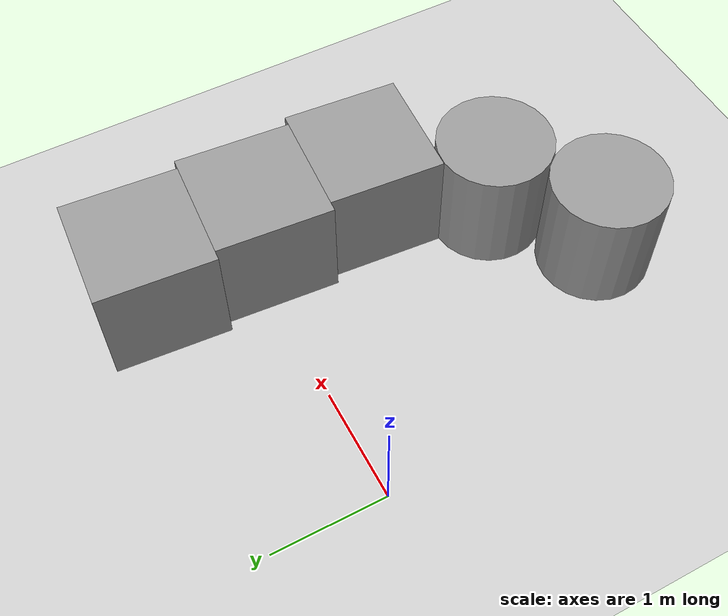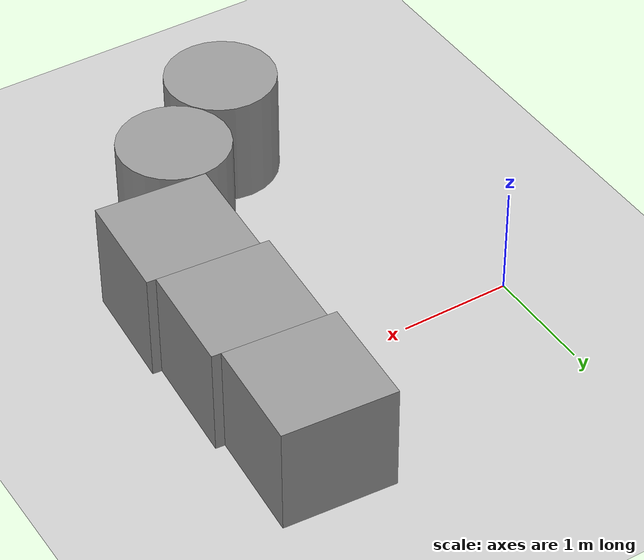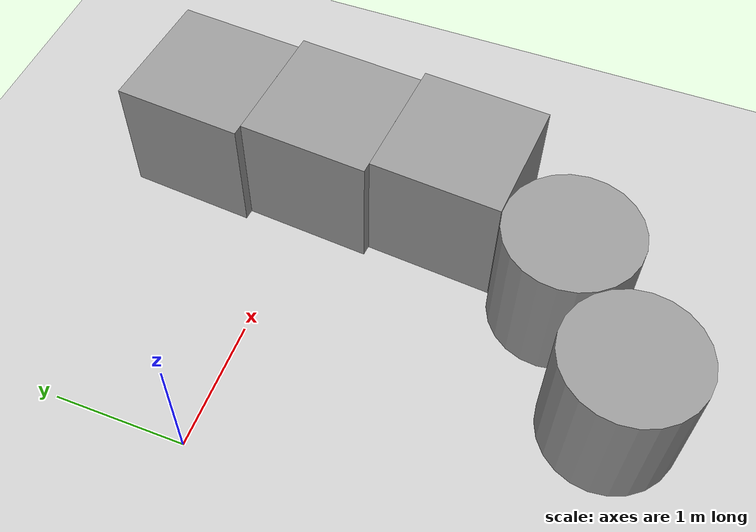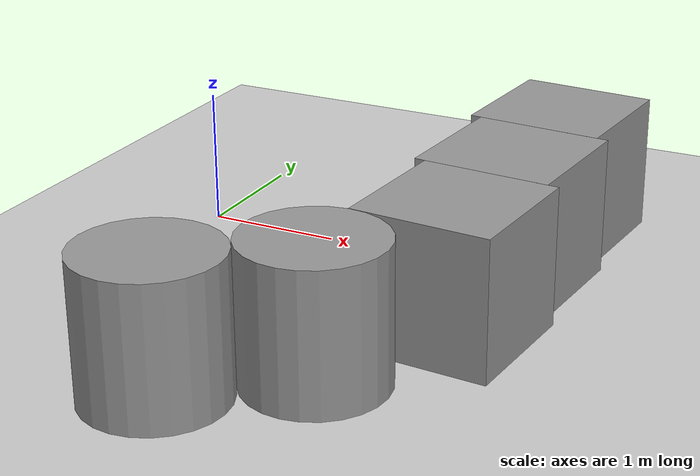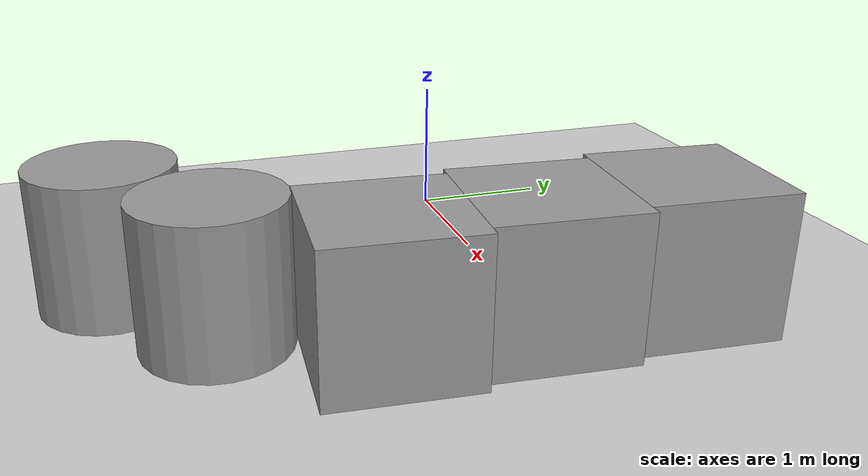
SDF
<sdf version="1.6">
 <world name="default">
  <light name="sun" type="directional">
   <pose>0 0 10 0 -0 0</pose>
   <diffuse>0.8 0.8 0.8 1</diffuse>
   <specular>0.2 0.2 0.2 1</specular>
   <attenuation>
    <range>1000</range>
    <constant>0.9</constant>
    <linear>0.01</linear>
    <quadratic>0.001</quadratic>
   </attenuation>
   <direction>-0.5 0.1 -0.9</direction>
  </light>
  <model name="ground_plane">
   <static>1</static>
   <link name="link">
    <collision name="collision">
     <geometry><plane><normal>0 0 1</normal><size>100 100</size></plane></geometry>
     <surface>
      <contact><collide_bitmask>65535</collide_bitmask></contact>
      <friction><ode><mu>100</mu><mu2>50</mu2></ode></friction>
     </surface>
    </collision>
    <visual name="visual">
     <cast_shadows>0</cast_shadows>
     <geometry><plane><normal>0 0 1</normal><size>100 100</size></plane></geometry>
     <material>
      <script><uri>file://media/materials/scripts/gazebo.material</uri><name>Gazebo/Grey</name></script>
     </material>
    </visual>
   </link>
  </model>
  <gravity>0 0 -9.8</gravity>
  <magnetic_field>6e-06 2.3e-05 -4.2e-05</magnetic_field>
  <atmosphere type="adiabatic"/>
  <physics name="default_physics" default="0" type="ode">
   <max_step_size>0.001</max_step_size>
   <real_time_factor>1</real_time_factor>
   <real_time_update_rate>1000</real_time_update_rate>
  </physics>
  <scene><ambient>0.4 0.4 0.4 1</ambient><background>0.7 0.7 0.7 1</background><shadows>1</shadows></scene>
  <audio><device>default</device></audio>
  <spherical_coordinates>
   <surface_model>EARTH_WGS84</surface_model>
   <latitude_deg>0</latitude_deg>
   <longitude_deg>0</longitude_deg>
   <elevation>0</elevation>
   <heading_deg>0</heading_deg>
  </spherical_coordinates>
  <model name="unit_box">
   <pose>2.48889 -0.111838 0.499998 -4e-06 -0 -0.073602</pose>
   <link name="link">
    <inertial>
     <mass>1</mass>
     <inertia>
      <ixx>0.166667</ixx>
      <ixy>0</ixy>
      <ixz>0</ixz>
      <iyy>0.166667</iyy>
      <iyz>0</iyz>
      <izz>0.166667</izz>
     </inertia>
    </inertial>
    <collision name="collision"><geometry><box><size>1 1 1</size></box></geometry></collision>
    <visual name="visual">
     <geometry><box><size>1 1 1</size></box></geometry>
     <material>
      <script><name>Gazebo/Grey</name><uri>file://media/materials/scripts/gazebo.material</uri></script>
     </material>
    </visual>
   </link>
  </model>
  <model name="unit_box_0">
   <pose>2.49611 -1.11511 0.499998 0 -4e-06 -0.073618</pose>
   <link name="link">
    <inertial>
     <mass>1</mass>
     <inertia>
      <ixx>0.166667</ixx>
      <ixy>0</ixy>
      <ixz>0</ixz>
      <iyy>0.166667</iyy>
      <iyz>0</iyz>
      <izz>0.166667</izz>
     </inertia>
    </inertial>
    <collision name="collision"><geometry><box><size>1 1 1</size></box></geometry></collision>
    <visual name="visual">
     <geometry><box><size>1 1 1</size></box></geometry>
     <material>
      <script><name>Gazebo/Grey</name><uri>file://media/materials/scripts/gazebo.material</uri></script>
     </material>
    </visual>
   </link>
  </model>
  <model name="unit_box_1">
   <pose>2.47995 0.891563 0.5 0 -0 -0.073608</pose>
   <link name="link">
    <inertial>
     <mass>1</mass>
     <inertia>
      <ixx>0.166667</ixx>
      <ixy>0</ixy>
      <ixz>0</ixz>
      <iyy>0.166667</iyy>
      <iyz>0</iyz>
      <izz>0.166667</izz>
     </inertia>
    </inertial>
    <collision name="collision"><geometry><box><size>1 1 1</size></box></geometry></collision>
    <visual name="visual">
     <geometry><box><size>1 1 1</size></box></geometry>
     <material>
      <script><name>Gazebo/Grey</name><uri>file://media/materials/scripts/gazebo.material</uri></script>
     </material>
    </visual>
   </link>
  </model>
  <model name="unit_cylinder">
   <pose>1.98081 -2.08106 0.499997 4e-06 -4e-06 0.034981</pose>
   <link name="link">
    <inertial>
     <mass>1</mass>
     <inertia><ixx>0.145833</ixx><ixy>0</ixy><ixz>0</ixz><iyy>0.145833</iyy><iyz>0</iyz><izz>0.125</izz></inertia>
    </inertial>
    <collision name="collision">
     <geometry><cylinder><radius>0.5</radius><length>1</length></cylinder></geometry>
    </collision>
    <visual name="visual">
     <geometry><cylinder><radius>0.5</radius><length>1</length></cylinder></geometry>
     <material>
      <script><name>Gazebo/Grey</name><uri>file://media/materials/scripts/gazebo.material</uri></script>
     </material>
    </visual>
   </link>
  </model>
  <model name="unit_cylinder_0">
   <pose>1.17872 -2.67935 0.499991 1e-06 1e-06 -0.00103</pose>
   <link name="link">
    <inertial>
     <mass>1</mass>
     <inertia><ixx>0.145833</ixx><ixy>0</ixy><ixz>0</ixz><iyy>0.145833</iyy><iyz>0</iyz><izz>0.125</izz></inertia>
    </inertial>
    <collision name="collision">
     <geometry><cylinder><radius>0.5</radius><length>1</length></cylinder></geometry>
    </collision>
    <visual name="visual">
     <geometry><cylinder><radius>0.5</radius><length>1</length></cylinder></geometry>
     <material>
      <script><name>Gazebo/Grey</name><uri>file://media/materials/scripts/gazebo.material</uri></script>
     </material>
    </visual>
   </link>
  </model>
 </world>
</sdf>
